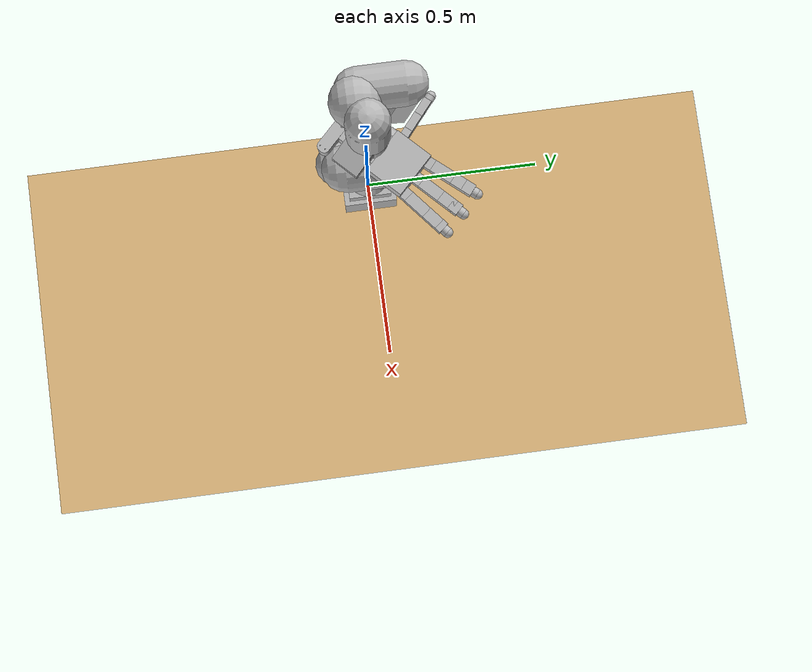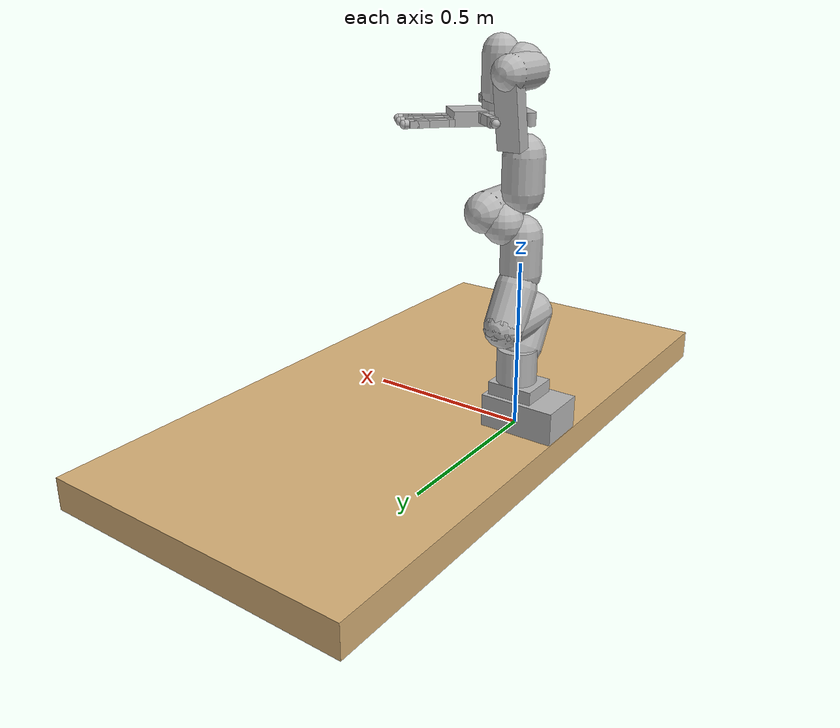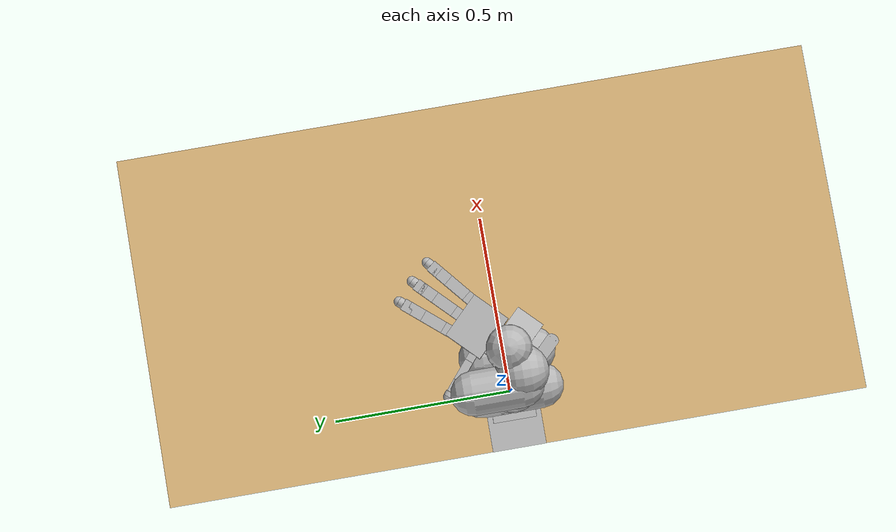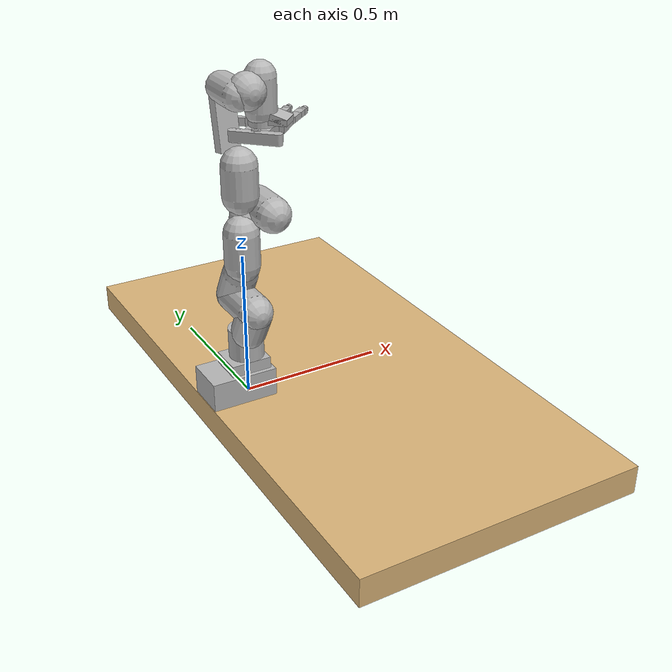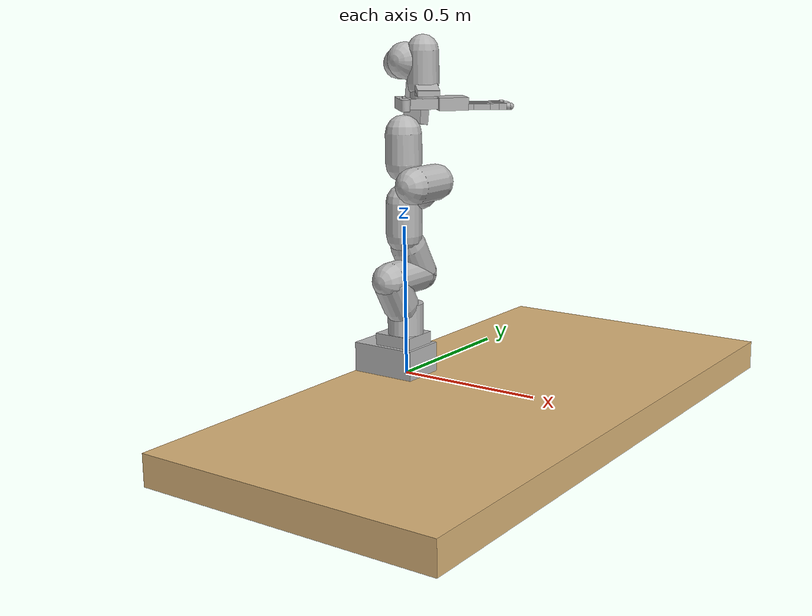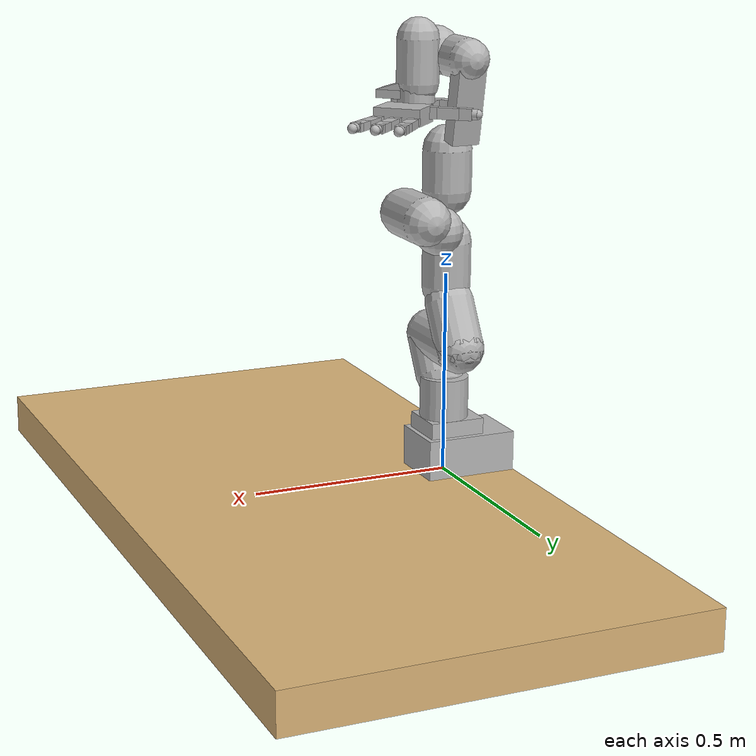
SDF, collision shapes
<?xml version="1.0"?>
<sdf version="1.7">
  <model name="fr3_algr_zed2i">

    <!-- TABLETOP -->

    <link name="tabletop_base">
      <pose>0.34 0.0 -0.05 0.0 0.0 0.0</pose>
      <inertial>
        <pose>0 0 0 0 0 0</pose>
        <mass>10</mass>
        <inertia>
          <ixx>3.3417</ixx>
          <ixy>0</ixy>
          <ixz>0</ixz>
          <iyy>0.84167</iyy>
          <iyz>0</iyz>
          <izz>4.1667</izz>
        </inertia>
      </inertial>
      <visual name="tabletop_visual">
        <geometry>
          <box>
            <size>1 2 0.1</size>
          </box>
        </geometry>
        <material>
          <diffuse>0.859375 0.70703125 0.47265625 1.</diffuse>
        </material>
      </visual>
      <collision name="tabletop_collision">
        <geometry>
          <box>
            <size>1 2 0.1</size>
          </box>
        </geometry>
      </collision>
    </link>
    <joint name="table_weld" type="fixed">
      <child>tabletop_base</child>
      <parent>world</parent>
    </joint>

    <!-- ARM LINKS -->

    <joint name="arm_weld" type="fixed">
      <child>fr3_link0</child>
      <parent>world</parent>
    </joint>
    <link name="fr3_link0">
      <inertial>
        <pose>-0.03762 0 0.061412 0 0 0</pose>
        <mass>0.62977</mass>
        <inertia>
          <ixx>0.0019855</ixx>
          <ixy>0</ixy>
          <ixz>-0.0001985</ixz>
          <iyy>0.0034589</iyy>
          <iyz>0</iyz>
          <izz>0.0036964</izz>
        </inertia>
      </inertial>
      <visual name="fr3_link0_visual">
        <geometry>
          <mesh>
            <scale>1 1 1</scale>
            <uri>../fr3/visual/link0.obj</uri>
          </mesh>
        </geometry>
      </visual>
      <collision name="fr3_link0_collision_1">
        <pose>-0.043 0.0 0.05 0.0 0.0 0.0</pose>
        <geometry>
          <box>
            <size>0.23 0.15 0.1</size>
          </box>
        </geometry>
      </collision>
      <collision name="fr3_link0_collision_2">
        <pose>-0.01 0.0 0.12 0.0 0.0 0.0</pose>
        <geometry>
          <box>
            <size>0.14 0.12 0.04</size>
          </box>
        </geometry>
      </collision>
    </link>

    <joint name="fr3_joint1" type="revolute">
      <child>fr3_link1</child>
      <parent>fr3_link0</parent>
      <pose relative_to="fr3_link0">0 0 0.333 0 0 0</pose>
      <axis>
        <xyz>0 0 1</xyz>
        <limit>
          <lower>-2.3093</lower>
          <upper>2.3093 </upper>
          <effort>87.0</effort>
          <velocity>2.0</velocity>
        </limit>
        <dynamics>
          <damping>0.0628</damping>  <!-- # from [1] -->
          <friction>0.2549</friction>
          <spring_reference>0</spring_reference>
          <spring_stiffness>0</spring_stiffness>
        </dynamics>
      </axis>
    </joint>

    <link name="fr3_link1">
      <pose relative_to="fr3_joint1">0 0 0 0 0 0</pose>
      <inertial>
        <pose>0 -0.016667 -0.05 0 0 0</pose>
        <mass>4.9707</mass>
        <inertia>
          <ixx>0.040696</ixx>
          <ixy>0</ixy>
          <ixz>0</ixz>
          <iyy>0.027895</iyy>
          <iyz>0.0014881</iyz>
          <izz>0.021218</izz>
        </inertia>
      </inertial>
      <visual name="fr3_link1_visual">
        <geometry>
          <mesh>
            <scale>1 1 1</scale>
            <uri>../fr3/visual/link1.obj</uri>
          </mesh>
        </geometry>
      </visual>
      <collision name="fr3_link1_collision_1">
        <pose>0.0 -0.05 -0.05 0.52359877559 0.0 0.0</pose>
        <geometry>
          <capsule>
            <length>0.1</length>
            <radius>0.06</radius>
          </capsule>
        </geometry>
      </collision>
      <collision name="fr3_link1_collision_2">
        <pose>0.0 0.0 -0.15 0.0 0.0 0.0</pose>
        <geometry>
          <cylinder>
            <length>0.12</length>
            <radius>0.06</radius>
          </cylinder>
        </geometry>
      </collision>
      <collision name="fr3_link1_collision_3">
        <pose>0.0 0.0 0.0 1.57079632679 0.0 0.0</pose>
        <geometry>
          <capsule>
            <length>0.16</length>
            <radius>0.06</radius>
          </capsule>
        </geometry>
      </collision>
    </link>

    <joint name="fr3_joint2" type="revolute">
      <child>fr3_link2</child>
      <parent>fr3_link1</parent>
      <pose relative_to="fr3_link1">0 0 0 -1.57079632679 0 0</pose>
      <axis>
        <xyz>0 0 1</xyz>
        <limit>
          <lower>-1.5133</lower>
          <upper>1.5133</upper>
          <effort>87.0</effort>
          <velocity>1.0</velocity>
        </limit>
        <dynamics>
          <damping>0.2088</damping>  <!-- # from [1] -->
          <friction>0.1413</friction>
          <spring_reference>0</spring_reference>
          <spring_stiffness>0</spring_stiffness>
        </dynamics>
      </axis>
    </joint>

    <link name="fr3_link2">
      <pose relative_to="fr3_joint2">0 0 0 0 0 0</pose>
      <inertial>
        <pose>0 -0.12064 0.025641 0 0 0</pose>
        <mass>0.64693</mass>
        <inertia>
          <ixx>0.0065165</ixx>
          <ixy>0</ixy>
          <ixz>0</ixz>
          <iyy>0.0016969</iyy>
          <iyz>-0.0015597</iyz>
          <izz>0.0058885</izz>
        </inertia>
      </inertial>
      <visual name="fr3_link2_visual">
        <geometry>
          <mesh>
            <scale>1 1 1</scale>
            <uri>../fr3/visual/link2.obj</uri>
          </mesh>
        </geometry>
      </visual>
      <collision name="fr3_link2_collision_1">
        <pose>0.0 -0.195 0.0 1.57079632679 0.0 0.0</pose>
        <geometry>
          <capsule>
            <length>0.11</length>
            <radius>0.06</radius>
          </capsule>
        </geometry>
      </collision>
      <collision name="fr3_link2_collision_2">
        <pose>0.0 -0.05 0.05 -1.0471975512 0.0 0.0</pose>
        <geometry>
          <capsule>
            <length>0.12</length>
            <radius>0.06</radius>
          </capsule>
        </geometry>
      </collision>
    </link>

    <joint name="fr3_joint3" type="revolute">
      <child>fr3_link3</child>
      <parent>fr3_link2</parent>
      <pose relative_to="fr3_link2">0 -0.316 0 1.57079632679 0 0</pose>
      <axis>
        <xyz>0 0 1</xyz>
        <limit>
          <lower>-2.4937</lower>
          <upper>2.4937</upper>
          <effort>87.0</effort>
          <velocity>1.50</velocity>
        </limit>
        <dynamics>
          <damping>0.0361</damping>  <!-- # from [1] -->
          <friction>0.1879</friction>
          <spring_reference>0</spring_reference>
          <spring_stiffness>0</spring_stiffness>
        </dynamics>
      </axis>
    </joint>

    <link name="fr3_link3">
      <pose relative_to="fr3_joint3">0 0 0 0 0 0</pose>
      <inertial>
        <pose>0.072143 0.01 -0.0085714 0 0 0</pose>
        <mass>3.2286</mass>
        <inertia>
          <ixx>0.012774</ixx>
          <ixy>0.0010378</ixy>
          <ixz>-0.00088951</ixz>
          <iyy>0.0070746</iyy>
          <iyz>0.00069184</iyz>
          <izz>0.013515</izz>
        </inertia>
      </inertial>
      <visual name="fr3_link3_visual">
        <geometry>
          <mesh>
            <scale>1 1 1</scale>
            <uri>../fr3/visual/link3.obj</uri>
          </mesh>
        </geometry>
      </visual>
      <collision name="fr3_link3_collision_1">
        <pose>0.04 0.035 -0.03 0.0 0.0 0.0</pose>
        <geometry>
          <sphere>
            <radius>0.06</radius>
          </sphere>
        </geometry>
      </collision>
      <collision name="fr3_link3_collision_2">
        <pose>0.085 0.0 0.0 1.57079632679 0.0 0.0</pose>
        <geometry>
          <capsule>
            <length>0.12</length>
            <radius>0.06</radius>
          </capsule>
        </geometry>
      </collision>
    </link>

    <joint name="fr3_joint4" type="revolute">
      <child>fr3_link4</child>
      <parent>fr3_link3</parent>
      <pose relative_to="fr3_link3">0.0825 0 0 1.57079632679 0 0</pose>
      <axis>
        <xyz>0 0 1</xyz>
        <limit>
          <lower>-2.7478</lower>
          <upper>-0.4461</upper>
          <effort>87.0</effort>
          <velocity>1.25</velocity>
        </limit>
        <dynamics>
          <damping>0.2174</damping>  <!-- # from [1] -->
          <friction>0.3625</friction>
          <spring_reference>0</spring_reference>
          <spring_stiffness>0</spring_stiffness>
        </dynamics>
      </axis>
    </joint>

    <link name="fr3_link4">
      <pose relative_to="fr3_joint4">0 0 0 0 0 0</pose>
      <inertial>
        <pose>-0.08 0.11 0 0 0 0</pose>
        <mass>3.5879</mass>
        <inertia>
          <ixx>0.013326</ixx>
          <ixy>0</ixy>
          <ixz>0</ixz>
          <iyy>0.0058841</iyy>
          <iyz>3.6439e-14</iyz>
          <izz>0.013326</izz>
        </inertia>
      </inertial>
      <visual name="fr3_link4_visual">
        <geometry>
          <mesh>
            <scale>1 1 1</scale>
            <uri>../fr3/visual/link4.obj</uri>
          </mesh>
        </geometry>
      </visual>
      <collision name="fr3_link4_collision_1">
        <pose>-0.08 0.11 0.0 1.57079632679 0.0 0.0</pose>
        <geometry>
          <capsule>
            <length>0.1</length>
            <radius>0.06</radius>
          </capsule>
        </geometry>
      </collision>
    </link>

    <joint name="fr3_joint5" type="revolute">
      <child>fr3_link5</child>
      <parent>fr3_link4</parent>
      <pose relative_to="fr3_link4">-0.0825 0.384 0 -1.57079632679 0 0</pose>
      <axis>
        <xyz>0 0 1</xyz>
        <limit>
          <lower>-2.4800</lower>
          <upper>2.4800</upper>
          <effort>12.0</effort>
          <velocity>3.0</velocity>
        </limit>
        <dynamics>
          <damping>0.1021</damping>  <!-- # from [1] -->
          <friction>0.2728</friction>
          <spring_reference>0</spring_reference>
          <spring_stiffness>0</spring_stiffness>
        </dynamics>
      </axis>
    </joint>

    <link name="fr3_link5">
      <pose relative_to="fr3_joint5">0 0 0 0 0 0</pose>
      <inertial>
        <pose>0 0.054052 -0.031226 0 0 0</pose>
        <mass>1.2259</mass>
        <inertia>
          <ixx>0.0073008</ixx>
          <ixy>0</ixy>
          <ixz>0</ixz>
          <iyy>0.005003</iyy>
          <iyz>0.00097758</iyz>
          <izz>0.0035848</izz>
        </inertia>
      </inertial>
      <visual name="fr3_link5_visual">
        <geometry>
          <mesh>
            <scale>1 1 1</scale>
            <uri>../fr3/visual/link5.obj</uri>
          </mesh>
        </geometry>
      </visual>
      <collision name="fr3_link5_collision_2">
        <pose>0.0 0.085 -0.1 -0.174533 0.0 0.0</pose>
        <geometry>
          <box>
            <size>0.07 0.045 0.2</size>
          </box>
        </geometry>
      </collision>
      <collision name="fr3_link5_collision_3">
        <pose>0.0 0.04 0.0 1.57079632679 0.0 0.0</pose>
        <geometry>
          <capsule>
            <length>0.11</length>
            <radius>0.05</radius>
          </capsule>
        </geometry>
      </collision>
    </link>

    <joint name="fr3_joint6" type="revolute">
      <child>fr3_link6</child>
      <parent>fr3_link5</parent>
      <pose relative_to="fr3_link5">0 0 0 1.57079632679 1.57079632679 0</pose>
      <axis>
        <xyz>0 0 1</xyz>
        <limit>
          <lower>0.8521</lower>
          <upper>4.2094</upper>
          <effort>12.0</effort>
          <velocity>1.50</velocity>
        </limit>
        <dynamics>
          <damping>1.6128e-4</damping>  <!-- # from [1] -->
          <friction>0.1529</friction>
          <spring_reference>0</spring_reference>
          <spring_stiffness>0</spring_stiffness>
        </dynamics>
      </axis>
    </joint>

    <link name="fr3_link6">
      <pose relative_to="fr3_joint6">0 0 0 0 0 1.57079632679</pose>
      <!-- original -->
      <inertial>
        <pose>0.063231 -0.0021948 0.0078052 0 0 0</pose>
        <mass>1.6666</mass>
        <inertia>
          <ixx>0.00454</ixx>
          <ixy>0.00043226</ixy>
          <ixz>0.00043226</ixz>
          <iyy>0.0034907</iyy>
          <iyz>-0.00015863</iyz>
          <izz>0.0055593</izz>
        </inertia>
      </inertial>
      <visual name="fr3_link6_visual">
        <geometry>
          <mesh>
            <scale>1 1 1</scale>
            <uri>../fr3/visual/link6.obj</uri>
          </mesh>
        </geometry>
      </visual>
      <collision name="fr3_link6_collision_1">
        <pose>0.03 0.01 0.02 0.0 0.0 0.0</pose>
        <geometry>
          <sphere>
            <radius>0.06</radius>
          </sphere>
        </geometry>
      </collision>
      <collision name="fr3_link6_collision_2">
        <pose>0.0845 -0.01 0.0 1.57079632679 0.0 0.0</pose>
        <geometry>
          <capsule>
            <length>0.105</length>
            <radius>0.051</radius>
          </capsule>
        </geometry>
      </collision>
    </link>

    <joint name="fr3_joint7" type="revolute">
      <child>fr3_link7</child>
      <parent>fr3_link6</parent>
      <pose relative_to="fr3_link6">0.088 0 0 1.57079632679 0 0</pose>
      <axis>
        <xyz>0 0 1</xyz>
        <limit>
          <lower>-2.6895</lower>
          <upper>2.6895</upper>
          <effort>12.0</effort>
          <velocity>3.0</velocity>
        </limit>
        <dynamics>
          <damping>0.0632</damping>  <!-- # from [1] -->
          <friction>0.2097</friction>
          <spring_reference>0</spring_reference>
          <spring_stiffness>0</spring_stiffness>
        </dynamics>
      </axis>
    </joint>

    <link name="fr3_link7">
      <pose relative_to="fr3_joint7">0 0 0 0 0 0</pose>
      <inertial>
        <pose>0.012874 0.01264 0.08083 0 0 0</pose>
        <mass>0.73552</mass>
        <inertia>
          <ixx>0.00066482</ixx>
          <ixy>-0.00020314</ixy>
          <ixz>-1.4906e-05</ixz>
          <iyy>0.00066981</iyy>
          <iyz>-1.5135e-05</iyz>
          <izz>0.0010836</izz>
        </inertia>
      </inertial>
      <visual name="fr3_link7_visual">
        <geometry>
          <mesh>
            <scale>1 1 1</scale>
            <uri>../fr3/visual/link7.obj</uri>
          </mesh>
        </geometry>
      </visual>
      <collision name="fr3_link7_collision_1">
        <pose>0.0275 0.027 0.087 0.0 0.0 -0.78539816339</pose>
        <geometry>
          <box>
            <size>0.07 0.1 0.02</size>
          </box>
        </geometry>
      </collision>
      <collision name="fr3_link7_collision_2">
        <pose>0.0 0.0 0.082 0.0 0.0 -0.78539816339</pose>
        <geometry>
          <cylinder>
            <radius>0.045</radius>
            <length>0.05</length>
          </cylinder>
        </geometry>
      </collision>
      <collision name="fr3_link7_collision_3">
        <pose>0.0275 0.027 0.072 0.3 0.0 -0.78539816339</pose>
        <geometry>
          <box>
            <size>0.07 0.1 0.02</size>
          </box>
        </geometry>
      </collision>
    </link>

    <!-- DUMMY FLANGE JOINT -->

    <joint name="fr3_flange_joint" type="fixed">
      <child>fr3_flange</child>
      <parent>fr3_link7</parent>
      <pose relative_to="fr3_link7">0 0 0.107 0 0 -0.7853981633974484</pose>
    </joint>
    <link name="fr3_flange">
      <pose relative_to="fr3_flange_joint">0.0 0.0 0.0 0.0 0.0 0.0</pose>
    </link>

    <!-- FR3-TO-ALGR CONNECTOR -->

    <joint name="connector_fr3_joint" type="fixed">
      <child>connector</child>
      <parent>fr3_flange</parent>
      <pose relative_to="fr3_flange">0.0 0.0 0.0 0.0 0.0 0.0</pose>
    </joint>
    <link name="connector">
      <pose relative_to="connector_fr3_joint">0 0 0 0 0 0</pose>
      <inertial>
        <pose>-0.00360180 0.00323645 0.01116276 0 0 0</pose>
        <mass>0.070</mass>
        <inertia>
          <ixx>6.147e-5</ixx>
          <ixy>-9.26e-6</ixy>
          <ixz>-2.83e-6</ixz>
          <iyy>2.787e-5</iyy>
          <iyz>4.78e-6</iyz>
          <izz>7.271e-5</izz>
        </inertia>
      </inertial>
      <collision name="connector_collision">
        <pose>-0.009 0 0.017 0 0 -1.57079632679</pose>
        <geometry>
          <box>
            <size>0.078 0.095 0.034</size>
          </box>
        </geometry>
      </collision>
      <visual name="connector_visual">
        <pose>0 0 0 0 0 -1.57079632679</pose>
        <geometry>
          <mesh>
            <scale>1 1 1</scale>
            <uri>meshes/connector.obj</uri>
          </mesh>
        </geometry>
      </visual>
    </link>
    <drake:collision_filter_group name="link6_connector_cfg">
      <drake:member>fr3_link6</drake:member>
      <drake:member>connector</drake:member>
      <drake:ignored_collision_filter_group>
        link6_connector_cfg
      </drake:ignored_collision_filter_group>
    </drake:collision_filter_group>

    <!-- CONNECTOR TO ZED2i -->

    <joint name="connector_zed2i_joint" type="fixed">
      <child>zed2i</child>
      <parent>connector</parent>
      <pose relative_to="connector">-0.05568 0 0.021803664 0 -1.57079632679 0</pose>
    </joint>
    <link name="zed2i">
      <pose relative_to="connector_zed2i_joint">0 0 0 0 0 0</pose>
      <inertial>
        <pose>-0.003774 0 0.014944 0 0 0</pose>
        <mass>0.230</mass>
        <inertia>
          <ixx>5.84e-4</ixx>
          <ixy>0</ixy>
          <ixz>-1.3e-5</ixz>
          <iyy>9.9e-5</iyy>
          <iyz>0</iyz>
          <izz>5.47e-4</izz>
        </inertia>
      </inertial>
      <collision name="zed2i_collision">
        <pose>0 0 0 0 0 0</pose>
        <geometry>
          <mesh>
            <scale>1 1 1</scale>
            <uri>meshes/zed2i.obj</uri>
          </mesh>
        </geometry>
      </collision>
      <visual name="zed2i_visual">
        <pose>0 0 0 0 0 0</pose>
        <geometry>
          <mesh>
            <scale>1 1 1</scale>
            <uri>meshes/zed2i.obj</uri>
          </mesh>
        </geometry>
      </visual>
    </link>

    <joint name="zed2i_left_optical_joint" type="fixed">
      <child>zed2i_left_optical</child>
      <parent>zed2i</parent>
      <pose relative_to="connector">-0.02 0.06 0.015 -1.57079632679 0 -1.57079632679</pose>
    </joint>
    <link name="zed2i_left_optical">
      <pose relative_to="zed2i_left_optical_joint">0.0 0.0 0.0 0.0 0.0 0.0</pose>
    </link>

    <joint name="zed2i_right_optical_joint" type="fixed">
      <child>zed2i_right_optical</child>
      <parent>zed2i</parent>
      <pose relative_to="connector">-0.02 -0.06 0.015 -1.57079632679 0 -1.57079632679</pose>
    </joint>
    <link name="zed2i_right_optical">
      <pose relative_to="zed2i_right_optical_joint">0.0 0.0 0.0 0.0 0.0 0.0</pose>
    </link>

    <!-- HAND LINKS -->

    <joint name="connector_algr_joint" type="fixed">
      <child>algr_rh_palm</child>
      <parent>connector</parent>
      <pose relative_to="connector">0.13398 0 0.0265 3.14159265359 -1.57079632679 0</pose>
    </joint>

    <link name="algr_rh_palm">
      <pose relative_to="connector_algr_joint">0 0 0 0 0 0</pose>
      <inertial>
        <pose>-0.0093 -4.4621e-16 -0.0475 0 0 0</pose>
        <mass>0.4154</mass>
        <inertia>
          <ixx>0.00208916</ixx>
          <ixy>-3.63457e-06</ixy>
          <ixz>0.000223277</ixz>
          <iyy>0.00182848</iyy>
          <iyz>-1.75634e-05</iyz>
          <izz>0.000482459</izz>
        </inertia>
      </inertial>
      <collision name="algr_rh_palm_collision">
        <pose>-0.0093 0 -0.0475 0 0 0</pose>
        <geometry>
          <box>
            <size>0.0408 0.113 0.095</size>
          </box>
        </geometry>
      </collision>
      <visual name="algr_rh_palm_visual">
        <pose>0 0 0 0 0 0</pose>
        <geometry>
          <mesh>
            <scale>1 1 1</scale>
            <uri>../allegro/meshes/base_link_right.obj</uri>
          </mesh>
        </geometry>
      </visual>
    </link>
    <link name="algr_rh_if_bs">
      <pose relative_to="connector_algr_joint">0 0.0435 -0.001542 -0.087267 0 0</pose>
      <inertial>
        <pose>1.1193e-16 0 0.0082 0 0 0</pose>
        <mass>0.0119</mass>
        <inertia>
          <ixx>1.0167e-06</ixx>
          <ixy>0</ixy>
          <ixz>1.2683e-23</ixz>
          <iyy>6.4768e-07</iyy>
          <iyz>0</iyz>
          <izz>1.1309e-06</izz>
        </inertia>
      </inertial>
      <collision name="algr_rh_if_bs_collision">
        <pose>0 0 0.0082 0 0 0</pose>
        <geometry>
          <box>
            <size>0.0196 0.0275 0.0164</size>
          </box>
        </geometry>
      </collision>
      <visual name="algr_rh_if_bs_visual">
        <geometry>
          <mesh>
            <scale>1 1 1</scale>
            <uri>../allegro/meshes/link_0.0.obj</uri>
          </mesh>
        </geometry>
      </visual>
    </link>
    <joint name="algr_rh_if_axl" type="revolute">
      <child>algr_rh_if_bs</child>
      <parent>algr_rh_palm</parent>
      <axis>
        <xyz expressed_in="connector_algr_joint">0 0.087156 0.996195</xyz>
        <limit>
          <lower>-0.47</lower>
          <upper>0.47</upper>
          <effort>0.7</effort>
          <velocity>7.0</velocity>
        </limit>
        <dynamics>
          <damping>1.5e-2</damping>
        </dynamics>
      </axis>
    </joint>
    <link name="algr_rh_if_px">
      <pose relative_to="connector_algr_joint">0 0.044929 0.014796 -0.087267 0 0</pose>
      <inertial>
        <pose>1.1402e-16 -1.1102e-16 0.027 0 0 0</pose>
        <mass>0.065</mass>
        <inertia>
          <ixx>1.9891e-05</ixx>
          <ixy>0</ixy>
          <ixz>-1.5226e-21</ixz>
          <iyy>1.7876e-05</iyy>
          <iyz>0</iyz>
          <izz>6.1772e-06</izz>
        </inertia>
      </inertial>
      <collision name="algr_rh_if_px_collision">
        <pose>0 0 0.027 0 0 0</pose>
        <geometry>
          <box>
            <size>0.0196 0.0275 0.054</size>
          </box>
        </geometry>
      </collision>
      <visual name="algr_rh_if_px_visual">
        <geometry>
          <mesh>
            <scale>1 1 1</scale>
            <uri>../allegro/meshes/link_1.0.obj</uri>
          </mesh>
        </geometry>
      </visual>
    </link>
    <joint name="algr_rh_if_mcp" type="revolute">
      <child>algr_rh_if_px</child>
      <parent>algr_rh_if_bs</parent>
      <axis>
        <xyz expressed_in="connector_algr_joint">0 0.996195 -0.087156</xyz>
        <limit>
          <lower>-0.196</lower>
          <upper>1.61</upper>
          <effort>0.7</effort>
          <velocity>7.0</velocity>
        </limit>
        <dynamics>
          <damping>1.5e-2</damping>
        </dynamics>
      </axis>
    </joint>
    <link name="algr_rh_if_md">
      <pose relative_to="connector_algr_joint">0 0.049636 0.06859 -0.087267 0 0</pose>
      <inertial>
        <pose>-1.0889e-16 0 0.0192 0 0 0</pose>
        <mass>0.0355</mass>
        <inertia>
          <ixx>6.5995e-06</ixx>
          <ixy>0</ixy>
          <ixz>-3.5813e-22</ixz>
          <iyy>5.4987e-06</iyy>
          <iyz>0</iyz>
          <izz>3.3737e-06</izz>
        </inertia>
      </inertial>
      <collision name="algr_rh_if_md_collision">
        <pose>0 0 0.0192 0 0 0</pose>
        <geometry>
          <box>
            <size>0.0196 0.0275 0.0384</size>
          </box>
        </geometry>
      </collision>
      <visual name="algr_rh_if_md_visual">
        <geometry>
          <mesh>
            <scale>1 1 1</scale>
            <uri>../allegro/meshes/link_2.0.obj</uri>
          </mesh>
        </geometry>
      </visual>
    </link>
    <joint name="algr_rh_if_pip" type="revolute">
      <child>algr_rh_if_md</child>
      <parent>algr_rh_if_px</parent>
      <axis>
        <xyz expressed_in="connector_algr_joint">0 0.996195 -0.087156</xyz>
        <limit>
          <lower>-0.174</lower>
          <upper>1.709</upper>
          <effort>0.7</effort>
          <velocity>7.0</velocity>
        </limit>
        <dynamics>
          <damping>1.5e-2</damping>
        </dynamics>
      </axis>
    </joint>
    <link name="algr_rh_if_ds">
      <pose relative_to="connector_algr_joint">0 0.052983 0.106844 -0.087267 0 0</pose>
      <inertial>
        <pose>1.1233e-16 -1.1102e-16 0.011823 0 0 0</pose>
        <mass>0.0264</mass>
        <inertia>
          <ixx>4.7816e-06</ixx>
          <ixy>0</ixy>
          <ixz>-3.0165e-22</ixz>
          <iyy>4.4476e-06</iyy>
          <iyz>0</iyz>
          <izz>2.0646e-06</izz>
        </inertia>
      </inertial>
      <collision name="algr_rh_if_ds_collision_1">
        <pose>0 0 0.00235 0 0 0</pose>
        <geometry>
          <box>
            <size>0.0196 0.0275 0.0247</size>
          </box>
        </geometry>
      </collision>
      <collision name="algr_rh_if_ds_tip_collision_1_FROGGERCOL">
        <pose>0 0 0.0267 0 0 0</pose>
        <geometry>
          <sphere>
            <radius>0.012</radius>
          </sphere>
        </geometry>
        <drake:proximity_properties>
          <drake:rigid_hydroelastic/>
          <drake:mesh_resolution_hint>0.1</drake:mesh_resolution_hint>
          <drake:hunt_crossley_dissipation>1.0</drake:hunt_crossley_dissipation>
        </drake:proximity_properties>
      </collision>
      <collision name="algr_rh_if_ds_tip_collision_2_FROGGERCOL">
        <pose>0 0 0.0210875 0 0 0</pose>
        <geometry>
          <cylinder>
            <length>0.0122875</length>
            <radius>0.012</radius>
          </cylinder>
        </geometry>
      </collision>
      <visual name="algr_rh_if_ds_visual">
        <geometry>
          <mesh>
            <scale>1 1 1</scale>
            <uri>../allegro/meshes/link_3.0.obj</uri>
          </mesh>
        </geometry>
      </visual>
      <visual name="algr_rh_if_ds_tip_visual_1">
        <pose>0 0 0.0267 0 0 0</pose>
        <geometry>
          <mesh>
            <scale>1 1 1</scale>
            <uri>../allegro/meshes/link_3.0_tip.obj</uri>
          </mesh>
        </geometry>
      </visual>
    </link>
    <joint name="algr_rh_if_dip" type="revolute">
      <child>algr_rh_if_ds</child>
      <parent>algr_rh_if_md</parent>
      <axis>
        <xyz expressed_in="connector_algr_joint">0 0.996195 -0.087156</xyz>
        <limit>
          <lower>-0.227</lower>
          <upper>1.618</upper>
          <effort>0.7</effort>
          <velocity>7.0</velocity>
        </limit>
        <dynamics>
          <damping>1.5e-2</damping>
        </dynamics>
      </axis>
    </joint>
    <link name="algr_rh_mf_bs">
      <pose relative_to="connector_algr_joint">0 0 0.0007 0 0 0</pose>
      <inertial>
        <pose>-4.4409e-16 -5.5557e-16 0.0082 0 0 0</pose>
        <mass>0.0119</mass>
        <inertia>
          <ixx>1.0167e-06</ixx>
          <ixy>-2.0483e-23</ixy>
          <ixz>0</ixz>
          <iyy>6.4768e-07</iyy>
          <iyz>-2.6825e-23</iyz>
          <izz>1.1309e-06</izz>
        </inertia>
      </inertial>
      <collision name="algr_rh_mf_bs_collision">
        <pose>0 0 0.0082 0 0 0</pose>
        <geometry>
          <box>
            <size>0.0196 0.0275 0.0164</size>
          </box>
        </geometry>
      </collision>
      <visual name="algr_rh_mf_bs_visual">
        <geometry>
          <mesh>
            <scale>1 1 1</scale>
            <uri>../allegro/meshes/link_0.0.obj</uri>
          </mesh>
        </geometry>
      </visual>
    </link>
    <joint name="algr_rh_mf_axl" type="revolute">
      <child>algr_rh_mf_bs</child>
      <parent>algr_rh_palm</parent>
      <axis>
        <xyz expressed_in="connector_algr_joint">0 0 1</xyz>
        <limit>
          <lower>-0.47</lower>
          <upper>0.47</upper>
          <effort>0.7</effort>
          <velocity>7.0</velocity>
        </limit>
        <dynamics>
          <damping>1.5e-2</damping>
        </dynamics>
      </axis>
    </joint>
    <link name="algr_rh_mf_px">
      <pose relative_to="connector_algr_joint">0 0 0.0171 0 0 0</pose>
      <inertial>
        <pose>-2.2204e-16 -4.4559e-16 0.027 0 0 0</pose>
        <mass>0.065</mass>
        <inertia>
          <ixx>1.9891e-05</ixx>
          <ixy>-1.1188e-22</ixy>
          <ixz>0</ixz>
          <iyy>1.7876e-05</iyy>
          <iyz>6.4941e-22</iyz>
          <izz>6.1772e-06</izz>
        </inertia>
      </inertial>
      <collision name="algr_rh_mf_px_collision">
        <pose>0 0 0.027 0 0 0</pose>
        <geometry>
          <box>
            <size>0.0196 0.0275 0.054</size>
          </box>
        </geometry>
      </collision>
      <visual name="algr_rh_mf_px_visual">
        <geometry>
          <mesh>
            <scale>1 1 1</scale>
            <uri>../allegro/meshes/link_1.0.obj</uri>
          </mesh>
        </geometry>
      </visual>
    </link>
    <joint name="algr_rh_mf_mcp" type="revolute">
      <child>algr_rh_mf_px</child>
      <parent>algr_rh_mf_bs</parent>
      <axis>
        <xyz expressed_in="connector_algr_joint">0 1 0</xyz>
        <limit>
          <lower>-0.196</lower>
          <upper>1.61</upper>
          <effort>0.7</effort>
          <velocity>7.0</velocity>
        </limit>
        <dynamics>
          <damping>1.5e-2</damping>
        </dynamics>
      </axis>
    </joint>
    <link name="algr_rh_mf_md">
      <pose relative_to="connector_algr_joint">0 0 0.0711 0 0 0</pose>
      <inertial>
        <pose>-4.4409e-16 -4.4516e-16 0.0192 0 0 0</pose>
        <mass>0.0355</mass>
        <inertia>
          <ixx>6.5995e-06</ixx>
          <ixy>-6.1105e-23</ixy>
          <ixz>0</ixz>
          <iyy>5.4987e-06</iyy>
          <iyz>1.1796e-22</iyz>
          <izz>3.3737e-06</izz>
        </inertia>
      </inertial>
      <collision name="algr_rh_mf_md_collision">
        <pose>0 0 0.0192 0 0 0</pose>
        <geometry>
          <box>
            <size>0.0196 0.0275 0.0384</size>
          </box>
        </geometry>
      </collision>
      <visual name="algr_rh_mf_md_visual">
        <geometry>
          <mesh>
            <scale>1 1 1</scale>
            <uri>../allegro/meshes/link_2.0.obj</uri>
          </mesh>
        </geometry>
      </visual>
    </link>
    <joint name="algr_rh_mf_pip" type="revolute">
      <child>algr_rh_mf_md</child>
      <parent>algr_rh_mf_px</parent>
      <axis>
        <xyz expressed_in="connector_algr_joint">0 1 0</xyz>
        <limit>
          <lower>-0.174</lower>
          <upper>1.709</upper>
          <effort>0.7</effort>
          <velocity>7.0</velocity>
        </limit>
        <dynamics>
          <damping>1.5e-2</damping>
        </dynamics>
      </axis>
    </joint>
    <link name="algr_rh_mf_ds">
      <pose relative_to="connector_algr_joint">0 0 0.1095 0 0 0</pose>
      <inertial>
        <pose>-3.3307e-16 -5.5577e-16 0.011823 0 0 0</pose>
        <mass>0.0264</mass>
        <inertia>
          <ixx>4.7816e-06</ixx>
          <ixy>-1.854e-23</ixy>
          <ixz>0</ixz>
          <iyy>4.4476e-06</iyy>
          <iyz>1.3229e-22</iyz>
          <izz>2.0646e-06</izz>
        </inertia>
      </inertial>
      <collision name="algr_rh_mf_ds_collision_1">
        <pose>0 0 0.00235 0 0 0</pose>
        <geometry>
          <box>
            <size>0.0196 0.0275 0.0247</size>
          </box>
        </geometry>
      </collision>
      <collision name="algr_rh_mf_ds_tip_collision_1_FROGGERCOL">
        <pose>0 0 0.0267 0 0 0</pose>
        <geometry>
          <sphere>
            <radius>0.012</radius>
          </sphere>
        </geometry>
        <drake:proximity_properties>
          <drake:rigid_hydroelastic/>
          <drake:mesh_resolution_hint>0.1</drake:mesh_resolution_hint>
          <drake:hunt_crossley_dissipation>1.0</drake:hunt_crossley_dissipation>
        </drake:proximity_properties>
      </collision>
      <collision name="algr_rh_mf_ds_tip_collision_2_FROGGERCOL">
        <pose>0 0 0.0210875 0 0 0</pose>
        <geometry>
          <cylinder>
            <length>0.0122875</length>
            <radius>0.012</radius>
          </cylinder>
        </geometry>
      </collision>
      <visual name="algr_rh_mf_ds_visual">
        <geometry>
          <mesh>
            <scale>1 1 1</scale>
            <uri>../allegro/meshes/link_3.0.obj</uri>
          </mesh>
        </geometry>
      </visual>
      <visual name="algr_rh_mf_ds_tip_visual_1">
        <pose>0 0 0.0267 0 0 0</pose>
        <geometry>
          <mesh>
            <scale>1 1 1</scale>
            <uri>../allegro/meshes/link_3.0_tip.obj</uri>
          </mesh>
        </geometry>
      </visual>
    </link>
    <joint name="algr_rh_mf_dip" type="revolute">
      <child>algr_rh_mf_ds</child>
      <parent>algr_rh_mf_md</parent>
      <axis>
        <xyz expressed_in="connector_algr_joint">0 1 0</xyz>
        <limit>
          <lower>-0.227</lower>
          <upper>1.618</upper>
          <effort>0.7</effort>
          <velocity>7.0</velocity>
        </limit>
        <dynamics>
          <damping>1.5e-2</damping>
        </dynamics>
      </axis>
    </joint>
    <link name="algr_rh_rf_bs">
      <pose relative_to="connector_algr_joint">0 -0.0435 -0.001542 0.087267 0 0</pose>
      <inertial>
        <pose>-9.1038e-19 -1.1102e-16 0.0082 0 0 0</pose>
        <mass>0.0119</mass>
        <inertia>
          <ixx>1.0167e-06</ixx>
          <ixy>0</ixy>
          <ixz>-1.2683e-23</ixz>
          <iyy>6.4768e-07</iyy>
          <iyz>0</iyz>
          <izz>1.1309e-06</izz>
        </inertia>
      </inertial>
      <collision name="algr_rh_rf_bs_collision">
        <pose>0 0 0.0082 0 0 0</pose>
        <geometry>
          <box>
            <size>0.0196 0.0275 0.0164</size>
          </box>
        </geometry>
      </collision>
      <visual name="algr_rh_rf_bs_visual">
        <geometry>
          <mesh>
            <scale>1 1 1</scale>
            <uri>../allegro/meshes/link_0.0.obj</uri>
          </mesh>
        </geometry>
      </visual>
    </link>
    <joint name="algr_rh_rf_axl" type="revolute">
      <child>algr_rh_rf_bs</child>
      <parent>algr_rh_palm</parent>
      <axis>
        <xyz expressed_in="connector_algr_joint">0 -0.087156 0.996195</xyz>
        <limit>
          <lower>-0.47</lower>
          <upper>0.47</upper>
          <effort>0.7</effort>
          <velocity>7.0</velocity>
        </limit>
        <dynamics>
          <damping>1.5e-2</damping>
        </dynamics>
      </axis>
    </joint>
    <link name="algr_rh_rf_px">
      <pose relative_to="connector_algr_joint">0 -0.044929 0.014796 0.087267 0 0</pose>
      <inertial>
        <pose>-1.1402e-16 -3.3307e-16 0.027 0 0 0</pose>
        <mass>0.065</mass>
        <inertia>
          <ixx>1.9891e-05</ixx>
          <ixy>0</ixy>
          <ixz>1.5226e-21</ixz>
          <iyy>1.7876e-05</iyy>
          <iyz>0</iyz>
          <izz>6.1772e-06</izz>
        </inertia>
      </inertial>
      <collision name="algr_rh_rf_px_collision">
        <pose>0 0 0.027 0 0 0</pose>
        <geometry>
          <box>
            <size>0.0196 0.0275 0.054</size>
          </box>
        </geometry>
      </collision>
      <visual name="algr_rh_rf_px_visual">
        <geometry>
          <mesh>
            <scale>1 1 1</scale>
            <uri>../allegro/meshes/link_1.0.obj</uri>
          </mesh>
        </geometry>
      </visual>
    </link>
    <joint name="algr_rh_rf_mcp" type="revolute">
      <child>algr_rh_rf_px</child>
      <parent>algr_rh_rf_bs</parent>
      <axis>
        <xyz expressed_in="connector_algr_joint">0 0.996195 0.087156</xyz>
        <limit>
          <lower>-0.196</lower>
          <upper>1.61</upper>
          <effort>0.7</effort>
          <velocity>7.0</velocity>
        </limit>
        <dynamics>
          <damping>1.5e-2</damping>
        </dynamics>
      </axis>
    </joint>
    <link name="algr_rh_rf_md">
      <pose relative_to="connector_algr_joint">0 -0.049636 0.06859 0.087267 0 0</pose>
      <inertial>
        <pose>-2.1316e-18 -2.2204e-16 0.0192 0 0 0</pose>
        <mass>0.0355</mass>
        <inertia>
          <ixx>6.5995e-06</ixx>
          <ixy>0</ixy>
          <ixz>3.5813e-22</ixz>
          <iyy>5.4987e-06</iyy>
          <iyz>0</iyz>
          <izz>3.3737e-06</izz>
        </inertia>
      </inertial>
      <collision name="algr_rh_rf_md_collision">
        <pose>0 0 0.0192 0 0 0</pose>
        <geometry>
          <box>
            <size>0.0196 0.0275 0.0384</size>
          </box>
        </geometry>
      </collision>
      <visual name="algr_rh_rf_md_visual">
        <geometry>
          <mesh>
            <scale>1 1 1</scale>
            <uri>../allegro/meshes/link_2.0.obj</uri>
          </mesh>
        </geometry>
      </visual>
    </link>
    <joint name="algr_rh_rf_pip" type="revolute">
      <child>algr_rh_rf_md</child>
      <parent>algr_rh_rf_px</parent>
      <axis>
        <xyz expressed_in="connector_algr_joint">0 0.996195 0.087156</xyz>
        <limit>
          <lower>-0.174</lower>
          <upper>1.709</upper>
          <effort>0.7</effort>
          <velocity>7.0</velocity>
        </limit>
        <dynamics>
          <damping>1.5e-2</damping>
        </dynamics>
      </axis>
    </joint>
    <link name="algr_rh_rf_ds">
      <pose relative_to="connector_algr_joint">0 -0.052983 0.106844 0.087267 0 0</pose>
      <inertial>
        <pose>-1.3127e-18 -1.1102e-16 0.011823 0 0 0</pose>
        <mass>0.0264</mass>
        <inertia>
          <ixx>4.7816e-06</ixx>
          <ixy>0</ixy>
          <ixz>3.0165e-22</ixz>
          <iyy>4.4476e-06</iyy>
          <iyz>0</iyz>
          <izz>2.0646e-06</izz>
        </inertia>
      </inertial>
      <collision name="algr_rh_rf_ds_collision_1">
        <pose>0 0 0.00235 0 0 0</pose>
        <geometry>
          <box>
            <size>0.0196 0.0275 0.0247</size>
          </box>
        </geometry>
      </collision>
      <collision name="algr_rh_rf_ds_tip_collision_1_FROGGERCOL">
        <pose>0 0 0.0267 0 0 0</pose>
        <geometry>
          <sphere>
            <radius>0.012</radius>
          </sphere>
        </geometry>
        <drake:proximity_properties>
          <drake:rigid_hydroelastic/>
          <drake:mesh_resolution_hint>0.1</drake:mesh_resolution_hint>
          <drake:hunt_crossley_dissipation>1.0</drake:hunt_crossley_dissipation>
        </drake:proximity_properties>
      </collision>
      <collision name="algr_rh_rf_ds_tip_collision_2_FROGGERCOL">
        <pose>0 0 0.0210875 0 0 0</pose>
        <geometry>
          <cylinder>
            <length>0.0122875</length>
            <radius>0.012</radius>
          </cylinder>
        </geometry>
      </collision>
      <visual name="algr_rh_rf_ds_visual">
        <geometry>
          <mesh>
            <scale>1 1 1</scale>
            <uri>../allegro/meshes/link_3.0.obj</uri>
          </mesh>
        </geometry>
      </visual>
      <visual name="algr_rh_rf_ds_tip_visual_1">
        <pose>0 0 0.0267 0 0 0</pose>
        <geometry>
          <mesh>
            <scale>1 1 1</scale>
            <uri>../allegro/meshes/link_3.0_tip.obj</uri>
          </mesh>
        </geometry>
      </visual>
    </link>
    <joint name="algr_rh_rf_dip" type="revolute">
      <child>algr_rh_rf_ds</child>
      <parent>algr_rh_rf_md</parent>
      <axis>
        <xyz expressed_in="connector_algr_joint">0 0.996195 0.087156</xyz>
        <limit>
          <lower>-0.227</lower>
          <upper>1.618</upper>
          <effort>0.7</effort>
          <velocity>7.0</velocity>
        </limit>
        <dynamics>
          <damping>1.5e-2</damping>
        </dynamics>
      </axis>
    </joint>
    <link name="algr_rh_th_mp">
      <pose relative_to="connector_algr_joint">-0.0182 0.019333 -0.045987 3.14159 -1.48353 1.5708</pose>
      <inertial>
        <pose>-0.0179 0.009 0.0145 0 0 0</pose>
        <mass>0.0176</mass>
        <inertia>
          <ixx>4.7318e-06</ixx>
          <ixy>-4.7705e-22</ixy>
          <ixz>-9.541e-22</ixz>
          <iyy>4.9161e-06</iyy>
          <iyz>4.7705e-22</iyz>
          <izz>3.5752e-06</izz>
        </inertia>
      </inertial>
      <collision name="algr_rh_th_mp_collision">
        <pose>-0.0179 0.009 0.0145 0 0 0</pose>
        <geometry>
          <box>
            <size>0.0358 0.034 0.0455</size>
          </box>
        </geometry>
      </collision>
      <visual name="algr_rh_th_mp_visual">
        <geometry>
          <mesh>
            <scale>1 1 1</scale>
            <uri>../allegro/meshes/link_12.0_right.obj</uri>
          </mesh>
        </geometry>
      </visual>
    </link>
    <joint name="algr_rh_th_cmc" type="revolute">
      <child>algr_rh_th_mp</child>
      <parent>algr_rh_palm</parent>
      <axis>
        <xyz expressed_in="connector_algr_joint">0 -0.087156 -0.996195</xyz>
        <limit>
          <lower>0.263</lower>
          <upper>1.396</upper>
          <effort>0.7</effort>
          <velocity>7.0</velocity>
        </limit>
        <dynamics>
          <damping>1.5e-2</damping>
        </dynamics>
      </axis>
    </joint>
    <link name="algr_rh_th_bs">
      <pose relative_to="connector_algr_joint">-0.0132 0.056728 -0.076362 3.14159 -1.48353 1.5708</pose>
      <inertial>
        <pose>2.7786e-17 0 0.00885 0 0 0</pose>
        <mass>0.0119</mass>
        <inertia>
          <ixx>1.0606e-06</ixx>
          <ixy>0</ixy>
          <ixz>2.4383e-25</ixz>
          <iyy>6.9164e-07</iyy>
          <iyz>0</iyz>
          <izz>1.1309e-06</izz>
        </inertia>
      </inertial>
      <!-- [NOTE] this collision geometry caused problems for the Drake team -->
      <collision name='algr_rh_th_bs_collision'>
        <pose>0 0 0.00885 0 0 0</pose>
        <geometry>
          <box>
            <size>0.0196 0.0275 0.0177</size>
          </box>
        </geometry>
      </collision>
      <visual name="algr_rh_th_bs_visual">
        <geometry>
          <mesh>
            <scale>1 1 1</scale>
            <uri>../allegro/meshes/link_13.0.obj</uri>
          </mesh>
        </geometry>
      </visual>
    </link>
    <joint name="algr_rh_th_axl" type="revolute">
      <child>algr_rh_th_bs</child>
      <parent>algr_rh_th_mp</parent>
      <axis>
        <xyz expressed_in="connector_algr_joint">0 0.996195 -0.087156</xyz>
        <limit>
          <lower>-0.105</lower>
          <upper>1.163</upper>
          <effort>0.7</effort>
          <velocity>7.0</velocity>
        </limit>
        <dynamics>
          <damping>1.5e-2</damping>
        </dynamics>
      </axis>
    </joint>
    <link name="algr_rh_th_px">
      <pose relative_to="connector_algr_joint">-0.0132 0.074361 -0.077904 3.14159 -1.48353 1.5708</pose>
      <inertial>
        <pose>8.9165e-20 0 0.0257 0 0 0</pose>
        <mass>0.038</mass>
        <inertia>
          <ixx>1.0761e-05</ixx>
          <ixy>0</ixy>
          <ixz>-2.4806e-23</ixz>
          <iyy>9.5827e-06</iyy>
          <iyz>0</iyz>
          <izz>3.6113e-06</izz>
        </inertia>
      </inertial>
      <collision name="algr_rh_th_px_collision">
        <pose>0 0 0.0257 0 0 0</pose>
        <geometry>
          <box>
            <size>0.0196 0.0275 0.0514</size>
          </box>
        </geometry>
      </collision>
      <visual name="algr_rh_th_px_visual">
        <geometry>
          <mesh>
            <scale>1 1 1</scale>
            <uri>../allegro/meshes/link_14.0.obj</uri>
          </mesh>
        </geometry>
      </visual>
    </link>
    <joint name="algr_rh_th_mcp" type="revolute">
      <child>algr_rh_th_px</child>
      <parent>algr_rh_th_bs</parent>
      <axis>
        <xyz expressed_in="connector_algr_joint">1 0 0</xyz>
        <limit>
          <lower>-0.189</lower>
          <upper>1.644</upper>
          <effort>0.7</effort>
          <velocity>7.0</velocity>
        </limit>
        <dynamics>
          <damping>1.5e-2</damping>
        </dynamics>
      </axis>
    </joint>
    <link name="algr_rh_th_ds">
      <pose relative_to="connector_algr_joint">-0.0132 0.125565 -0.082384 3.14159 -1.48353 1.5708</pose>
      <inertial>
        <pose>2.7823e-17 -1.1102e-16 0.019365 0 0 0</pose>
        <mass>0.0556</mass>
        <inertia>
          <ixx>1.6162e-05</ixx>
          <ixy>0</ixy>
          <ixz>-4.0596e-23</ixz>
          <iyy>1.5383e-05</iyy>
          <iyz>0</iyz>
          <izz>4.4611e-06</izz>
        </inertia>
      </inertial>
      <collision name="algr_rh_th_ds_collision_1">
        <pose>0 0 0.01015 0 0 0</pose>
        <geometry>
          <box>
            <size>0.0196 0.0275 0.0403</size>
          </box>
        </geometry>
      </collision>
      <collision name="algr_rh_th_ds_tip_collision_1_FROGGERCOL">
        <pose>0 0 0.0423 0 0 0</pose>
        <geometry>
          <sphere>
            <radius>0.012</radius>
          </sphere>
        </geometry>
        <drake:proximity_properties>
          <drake:rigid_hydroelastic/>
          <drake:mesh_resolution_hint>0.1</drake:mesh_resolution_hint>
          <drake:hunt_crossley_dissipation>1.0</drake:hunt_crossley_dissipation>
        </drake:proximity_properties>
      </collision>
      <collision name="algr_rh_th_ds_tip_collision_2_FROGGERCOL">
        <pose>0 0 0.037 0 0 0</pose>
        <geometry>
          <cylinder>
            <length>0.0122875</length>
            <radius>0.012</radius>
          </cylinder>
        </geometry>
      </collision>

      <visual name="algr_rh_th_ds_visual">
        <geometry>
          <mesh>
            <scale>1 1 1</scale>
            <uri>../allegro/meshes/link_15.0.obj</uri>
          </mesh>
        </geometry>
      </visual>
      <visual name="algr_rh_th_ds_tip_visual_1">
        <pose>0 0 0.0423 0 0 0</pose>
        <geometry>
          <mesh>
            <scale>1 1 1</scale>
            <uri>../allegro/meshes/link_15.0_tip.obj</uri>
          </mesh>
        </geometry>
      </visual>
    </link>
    <joint name="algr_rh_th_ipl" type="revolute">
      <child>algr_rh_th_ds</child>
      <parent>algr_rh_th_px</parent>
      <axis>
        <xyz expressed_in="connector_algr_joint">1 0 0</xyz>
        <limit>
          <lower>-0.162</lower>
          <upper>1.719</upper>
          <effort>0.7</effort>
          <velocity>7.0</velocity>
        </limit>
        <dynamics>
          <damping>1.5e-2</damping>
        </dynamics>
      </axis>
    </joint>
    <drake:collision_filter_group name="thumb_base_cfg">
      <drake:member>algr_rh_th_bs</drake:member>
      <drake:member>algr_rh_palm</drake:member>
      <drake:ignored_collision_filter_group>
        thumb_base_cfg
      </drake:ignored_collision_filter_group>
    </drake:collision_filter_group>

    <!-- adding frame for heuristic IK sampling -->
    <joint name="dummy_sampling_joint" type="fixed">
      <child>algr_rh_palm_FROGGERSAMPLE</child>
      <parent>algr_rh_palm</parent>
      <pose>0.0 0.0 0.0 0.0 0.0 0.0</pose>
    </joint>
    <link name="algr_rh_palm_FROGGERSAMPLE">
      <pose relative_to="connector_algr_joint">0.0 0.0 0.0 0.0 0.0 0.0</pose>
    </link>

  </model>
</sdf>
